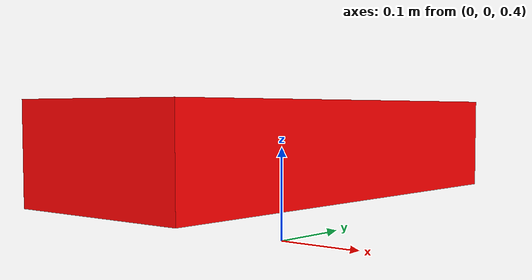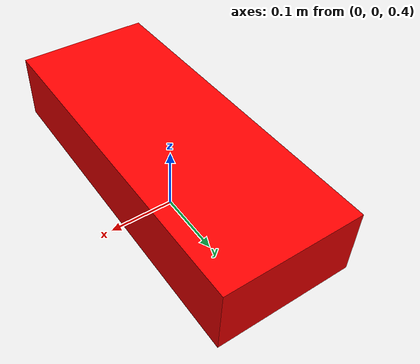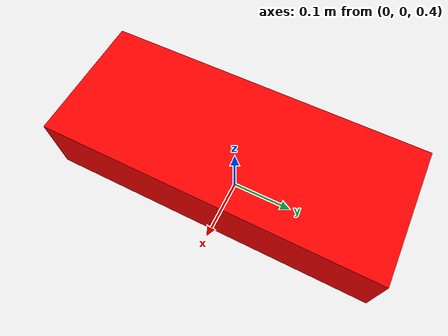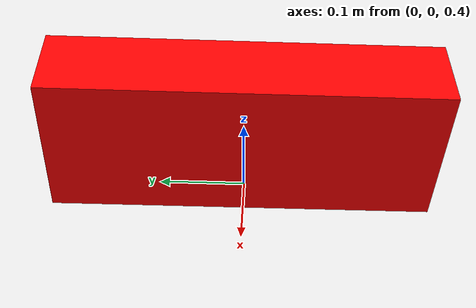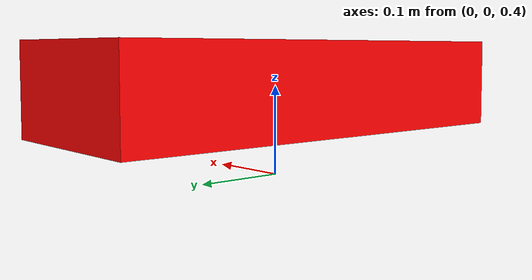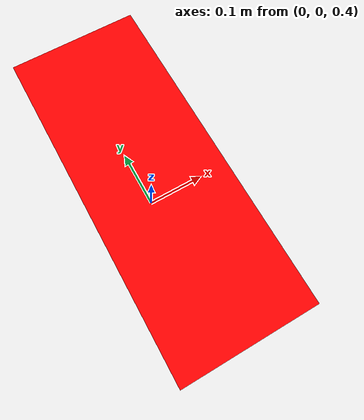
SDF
<?xml version='1.0'?>
<sdf version='1.6'>
  <model name='Cube'>
    <link name='main'>
	<pose frame=''>0 0 0.5 0 0 0</pose>
      <collision name='main_Collision'>
        <geometry>
          <box>
            <size>0.2 0.5 0.1 </size>
          </box>
        </geometry>
        <surface>
         <friction>
          <ode>
            <mu>0.02</mu>
            <mu2>0.02</mu2>
          </ode>
         </friction>
        </surface>
       </collision>
      <visual name='main_Visual'>
        <geometry>
          <box>
          <size>0.2 0.5 0.1</size>
	</box>
        </geometry>
        <material>
          <ambient>1.0 0.0 0.0 1</ambient>
          <diffuse>1.0 0.0 0.0 1</diffuse>
          <specular>0 0 0 0</specular>
          <emissive>0 0 0 1</emissive>
        </material>
      </visual>
     </link>
    <static>0</static>
  </model>
</sdf>
